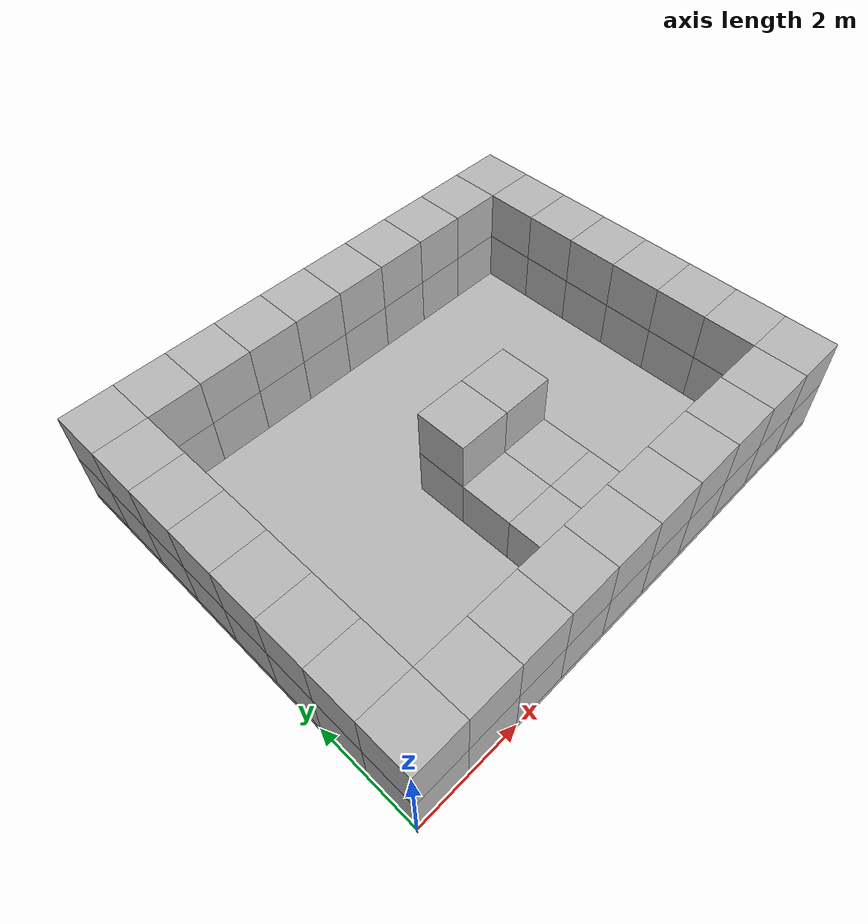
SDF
<sdf version="1.4">
  <world name="default">
    <light name="sun" type="directional">
      <cast_shadows>1</cast_shadows>
      <diffuse>0.8 0.8 0.8 1</diffuse>
      <specular>0.1 0.1 0.1 1</specular>
      <attenuation>
        <range>1000</range>
        <constant>0.9</constant>
        <linear>0.01</linear>
        <quadratic>0.001</quadratic>
      </attenuation>
      <direction>-0.5 0.5 -1</direction>
    </light>
    <model name="floor">
      <pose>5.0 4.0 -0.0625 0 0 0</pose>
      <static>true</static>
      <link name="link">
        <collision name="collision">
          <geometry>
            <box>
              <size>10.0 8.0 0.125</size>
            </box>
          </geometry>
        </collision>
        <visual name="visual">
          <geometry>
            <box>
              <size>10.0 8.0 0.125</size>
            </box>
          </geometry>
        </visual>
      </link>
    </model>
    <model name="box_0_0">
      <pose>0.5 0.5 0.5 0 0 0</pose>
      <static>true</static>
      <link name="link">
        <collision name="collision">
          <geometry>
            <box>
              <size>1.0 1.0 1.0</size>
            </box>
          </geometry>
        </collision>
        <visual name="visual">
          <geometry>
            <box>
              <size>1.0 1.0 1.0</size>
            </box>
          </geometry>
        </visual>
      </link>
    </model>
    <model name="box_0_1">
      <pose>0.5 1.5 0.5 0 0 0</pose>
      <static>true</static>
      <link name="link">
        <collision name="collision">
          <geometry>
            <box>
              <size>1.0 1.0 1.0</size>
            </box>
          </geometry>
        </collision>
        <visual name="visual">
          <geometry>
            <box>
              <size>1.0 1.0 1.0</size>
            </box>
          </geometry>
        </visual>
      </link>
    </model>
    <model name="box_0_2">
      <pose>0.5 2.5 0.5 0 0 0</pose>
      <static>true</static>
      <link name="link">
        <collision name="collision">
          <geometry>
            <box>
              <size>1.0 1.0 1.0</size>
            </box>
          </geometry>
        </collision>
        <visual name="visual">
          <geometry>
            <box>
              <size>1.0 1.0 1.0</size>
            </box>
          </geometry>
        </visual>
      </link>
    </model>
    <model name="box_0_3">
      <pose>0.5 3.5 0.5 0 0 0</pose>
      <static>true</static>
      <link name="link">
        <collision name="collision">
          <geometry>
            <box>
              <size>1.0 1.0 1.0</size>
            </box>
          </geometry>
        </collision>
        <visual name="visual">
          <geometry>
            <box>
              <size>1.0 1.0 1.0</size>
            </box>
          </geometry>
        </visual>
      </link>
    </model>
    <model name="box_0_4">
      <pose>0.5 4.5 0.5 0 0 0</pose>
      <static>true</static>
      <link name="link">
        <collision name="collision">
          <geometry>
            <box>
              <size>1.0 1.0 1.0</size>
            </box>
          </geometry>
        </collision>
        <visual name="visual">
          <geometry>
            <box>
              <size>1.0 1.0 1.0</size>
            </box>
          </geometry>
        </visual>
      </link>
    </model>
    <model name="box_0_5">
      <pose>0.5 5.5 0.5 0 0 0</pose>
      <static>true</static>
      <link name="link">
        <collision name="collision">
          <geometry>
            <box>
              <size>1.0 1.0 1.0</size>
            </box>
          </geometry>
        </collision>
        <visual name="visual">
          <geometry>
            <box>
              <size>1.0 1.0 1.0</size>
            </box>
          </geometry>
        </visual>
      </link>
    </model>
    <model name="box_0_6">
      <pose>0.5 6.5 0.5 0 0 0</pose>
      <static>true</static>
      <link name="link">
        <collision name="collision">
          <geometry>
            <box>
              <size>1.0 1.0 1.0</size>
            </box>
          </geometry>
        </collision>
        <visual name="visual">
          <geometry>
            <box>
              <size>1.0 1.0 1.0</size>
            </box>
          </geometry>
        </visual>
      </link>
    </model>
    <model name="box_0_7">
      <pose>0.5 7.5 0.5 0 0 0</pose>
      <static>true</static>
      <link name="link">
        <collision name="collision">
          <geometry>
            <box>
              <size>1.0 1.0 1.0</size>
            </box>
          </geometry>
        </collision>
        <visual name="visual">
          <geometry>
            <box>
              <size>1.0 1.0 1.0</size>
            </box>
          </geometry>
        </visual>
      </link>
    </model>
    <model name="box_1_0">
      <pose>1.5 0.5 0.5 0 0 0</pose>
      <static>true</static>
      <link name="link">
        <collision name="collision">
          <geometry>
            <box>
              <size>1.0 1.0 1.0</size>
            </box>
          </geometry>
        </collision>
        <visual name="visual">
          <geometry>
            <box>
              <size>1.0 1.0 1.0</size>
            </box>
          </geometry>
        </visual>
      </link>
    </model>
    <model name="box_1_7">
      <pose>1.5 7.5 0.5 0 0 0</pose>
      <static>true</static>
      <link name="link">
        <collision name="collision">
          <geometry>
            <box>
              <size>1.0 1.0 1.0</size>
            </box>
          </geometry>
        </collision>
        <visual name="visual">
          <geometry>
            <box>
              <size>1.0 1.0 1.0</size>
            </box>
          </geometry>
        </visual>
      </link>
    </model>
    <model name="box_2_0">
      <pose>2.5 0.5 0.5 0 0 0</pose>
      <static>true</static>
      <link name="link">
        <collision name="collision">
          <geometry>
            <box>
              <size>1.0 1.0 1.0</size>
            </box>
          </geometry>
        </collision>
        <visual name="visual">
          <geometry>
            <box>
              <size>1.0 1.0 1.0</size>
            </box>
          </geometry>
        </visual>
      </link>
    </model>
    <model name="box_2_7">
      <pose>2.5 7.5 0.5 0 0 0</pose>
      <static>true</static>
      <link name="link">
        <collision name="collision">
          <geometry>
            <box>
              <size>1.0 1.0 1.0</size>
            </box>
          </geometry>
        </collision>
        <visual name="visual">
          <geometry>
            <box>
              <size>1.0 1.0 1.0</size>
            </box>
          </geometry>
        </visual>
      </link>
    </model>
    <model name="box_3_0">
      <pose>3.5 0.5 0.5 0 0 0</pose>
      <static>true</static>
      <link name="link">
        <collision name="collision">
          <geometry>
            <box>
              <size>1.0 1.0 1.0</size>
            </box>
          </geometry>
        </collision>
        <visual name="visual">
          <geometry>
            <box>
              <size>1.0 1.0 1.0</size>
            </box>
          </geometry>
        </visual>
      </link>
    </model>
    <model name="box_3_7">
      <pose>3.5 7.5 0.5 0 0 0</pose>
      <static>true</static>
      <link name="link">
        <collision name="collision">
          <geometry>
            <box>
              <size>1.0 1.0 1.0</size>
            </box>
          </geometry>
        </collision>
        <visual name="visual">
          <geometry>
            <box>
              <size>1.0 1.0 1.0</size>
            </box>
          </geometry>
        </visual>
      </link>
    </model>
    <model name="box_4_0">
      <pose>4.5 0.5 0.5 0 0 0</pose>
      <static>true</static>
      <link name="link">
        <collision name="collision">
          <geometry>
            <box>
              <size>1.0 1.0 1.0</size>
            </box>
          </geometry>
        </collision>
        <visual name="visual">
          <geometry>
            <box>
              <size>1.0 1.0 1.0</size>
            </box>
          </geometry>
        </visual>
      </link>
    </model>
    <model name="box_4_1">
      <pose>4.5 1.5 0.5 0 0 0</pose>
      <static>true</static>
      <link name="link">
        <collision name="collision">
          <geometry>
            <box>
              <size>1.0 1.0 1.0</size>
            </box>
          </geometry>
        </collision>
        <visual name="visual">
          <geometry>
            <box>
              <size>1.0 1.0 1.0</size>
            </box>
          </geometry>
        </visual>
      </link>
    </model>
    <model name="box_4_2">
      <pose>4.5 2.5 0.5 0 0 0</pose>
      <static>true</static>
      <link name="link">
        <collision name="collision">
          <geometry>
            <box>
              <size>1.0 1.0 1.0</size>
            </box>
          </geometry>
        </collision>
        <visual name="visual">
          <geometry>
            <box>
              <size>1.0 1.0 1.0</size>
            </box>
          </geometry>
        </visual>
      </link>
    </model>
    <model name="box_4_3">
      <pose>4.5 3.5 0.5 0 0 0</pose>
      <static>true</static>
      <link name="link">
        <collision name="collision">
          <geometry>
            <box>
              <size>1.0 1.0 1.0</size>
            </box>
          </geometry>
        </collision>
        <visual name="visual">
          <geometry>
            <box>
              <size>1.0 1.0 1.0</size>
            </box>
          </geometry>
        </visual>
      </link>
    </model>
    <model name="box_4_7">
      <pose>4.5 7.5 0.5 0 0 0</pose>
      <static>true</static>
      <link name="link">
        <collision name="collision">
          <geometry>
            <box>
              <size>1.0 1.0 1.0</size>
            </box>
          </geometry>
        </collision>
        <visual name="visual">
          <geometry>
            <box>
              <size>1.0 1.0 1.0</size>
            </box>
          </geometry>
        </visual>
      </link>
    </model>
    <model name="box_5_0">
      <pose>5.5 0.5 0.5 0 0 0</pose>
      <static>true</static>
      <link name="link">
        <collision name="collision">
          <geometry>
            <box>
              <size>1.0 1.0 1.0</size>
            </box>
          </geometry>
        </collision>
        <visual name="visual">
          <geometry>
            <box>
              <size>1.0 1.0 1.0</size>
            </box>
          </geometry>
        </visual>
      </link>
    </model>
    <model name="box_5_1">
      <pose>5.5 1.5 0.5 0 0 0</pose>
      <static>true</static>
      <link name="link">
        <collision name="collision">
          <geometry>
            <box>
              <size>1.0 1.0 1.0</size>
            </box>
          </geometry>
        </collision>
        <visual name="visual">
          <geometry>
            <box>
              <size>1.0 1.0 1.0</size>
            </box>
          </geometry>
        </visual>
      </link>
    </model>
    <model name="box_5_2">
      <pose>5.5 2.5 0.5 0 0 0</pose>
      <static>true</static>
      <link name="link">
        <collision name="collision">
          <geometry>
            <box>
              <size>1.0 1.0 1.0</size>
            </box>
          </geometry>
        </collision>
        <visual name="visual">
          <geometry>
            <box>
              <size>1.0 1.0 1.0</size>
            </box>
          </geometry>
        </visual>
      </link>
    </model>
    <model name="box_5_3">
      <pose>5.5 3.5 0.5 0 0 0</pose>
      <static>true</static>
      <link name="link">
        <collision name="collision">
          <geometry>
            <box>
              <size>1.0 1.0 1.0</size>
            </box>
          </geometry>
        </collision>
        <visual name="visual">
          <geometry>
            <box>
              <size>1.0 1.0 1.0</size>
            </box>
          </geometry>
        </visual>
      </link>
    </model>
    <model name="box_5_7">
      <pose>5.5 7.5 0.5 0 0 0</pose>
      <static>true</static>
      <link name="link">
        <collision name="collision">
          <geometry>
            <box>
              <size>1.0 1.0 1.0</size>
            </box>
          </geometry>
        </collision>
        <visual name="visual">
          <geometry>
            <box>
              <size>1.0 1.0 1.0</size>
            </box>
          </geometry>
        </visual>
      </link>
    </model>
    <model name="box_6_0">
      <pose>6.5 0.5 0.5 0 0 0</pose>
      <static>true</static>
      <link name="link">
        <collision name="collision">
          <geometry>
            <box>
              <size>1.0 1.0 1.0</size>
            </box>
          </geometry>
        </collision>
        <visual name="visual">
          <geometry>
            <box>
              <size>1.0 1.0 1.0</size>
            </box>
          </geometry>
        </visual>
      </link>
    </model>
    <model name="box_6_7">
      <pose>6.5 7.5 0.5 0 0 0</pose>
      <static>true</static>
      <link name="link">
        <collision name="collision">
          <geometry>
            <box>
              <size>1.0 1.0 1.0</size>
            </box>
          </geometry>
        </collision>
        <visual name="visual">
          <geometry>
            <box>
              <size>1.0 1.0 1.0</size>
            </box>
          </geometry>
        </visual>
      </link>
    </model>
    <model name="box_7_0">
      <pose>7.5 0.5 0.5 0 0 0</pose>
      <static>true</static>
      <link name="link">
        <collision name="collision">
          <geometry>
            <box>
              <size>1.0 1.0 1.0</size>
            </box>
          </geometry>
        </collision>
        <visual name="visual">
          <geometry>
            <box>
              <size>1.0 1.0 1.0</size>
            </box>
          </geometry>
        </visual>
      </link>
    </model>
    <model name="box_7_7">
      <pose>7.5 7.5 0.5 0 0 0</pose>
      <static>true</static>
      <link name="link">
        <collision name="collision">
          <geometry>
            <box>
              <size>1.0 1.0 1.0</size>
            </box>
          </geometry>
        </collision>
        <visual name="visual">
          <geometry>
            <box>
              <size>1.0 1.0 1.0</size>
            </box>
          </geometry>
        </visual>
      </link>
    </model>
    <model name="box_8_0">
      <pose>8.5 0.5 0.5 0 0 0</pose>
      <static>true</static>
      <link name="link">
        <collision name="collision">
          <geometry>
            <box>
              <size>1.0 1.0 1.0</size>
            </box>
          </geometry>
        </collision>
        <visual name="visual">
          <geometry>
            <box>
              <size>1.0 1.0 1.0</size>
            </box>
          </geometry>
        </visual>
      </link>
    </model>
    <model name="box_8_7">
      <pose>8.5 7.5 0.5 0 0 0</pose>
      <static>true</static>
      <link name="link">
        <collision name="collision">
          <geometry>
            <box>
              <size>1.0 1.0 1.0</size>
            </box>
          </geometry>
        </collision>
        <visual name="visual">
          <geometry>
            <box>
              <size>1.0 1.0 1.0</size>
            </box>
          </geometry>
        </visual>
      </link>
    </model>
    <model name="box_9_0">
      <pose>9.5 0.5 0.5 0 0 0</pose>
      <static>true</static>
      <link name="link">
        <collision name="collision">
          <geometry>
            <box>
              <size>1.0 1.0 1.0</size>
            </box>
          </geometry>
        </collision>
        <visual name="visual">
          <geometry>
            <box>
              <size>1.0 1.0 1.0</size>
            </box>
          </geometry>
        </visual>
      </link>
    </model>
    <model name="box_9_1">
      <pose>9.5 1.5 0.5 0 0 0</pose>
      <static>true</static>
      <link name="link">
        <collision name="collision">
          <geometry>
            <box>
              <size>1.0 1.0 1.0</size>
            </box>
          </geometry>
        </collision>
        <visual name="visual">
          <geometry>
            <box>
              <size>1.0 1.0 1.0</size>
            </box>
          </geometry>
        </visual>
      </link>
    </model>
    <model name="box_9_2">
      <pose>9.5 2.5 0.5 0 0 0</pose>
      <static>true</static>
      <link name="link">
        <collision name="collision">
          <geometry>
            <box>
              <size>1.0 1.0 1.0</size>
            </box>
          </geometry>
        </collision>
        <visual name="visual">
          <geometry>
            <box>
              <size>1.0 1.0 1.0</size>
            </box>
          </geometry>
        </visual>
      </link>
    </model>
    <model name="box_9_3">
      <pose>9.5 3.5 0.5 0 0 0</pose>
      <static>true</static>
      <link name="link">
        <collision name="collision">
          <geometry>
            <box>
              <size>1.0 1.0 1.0</size>
            </box>
          </geometry>
        </collision>
        <visual name="visual">
          <geometry>
            <box>
              <size>1.0 1.0 1.0</size>
            </box>
          </geometry>
        </visual>
      </link>
    </model>
    <model name="box_9_4">
      <pose>9.5 4.5 0.5 0 0 0</pose>
      <static>true</static>
      <link name="link">
        <collision name="collision">
          <geometry>
            <box>
              <size>1.0 1.0 1.0</size>
            </box>
          </geometry>
        </collision>
        <visual name="visual">
          <geometry>
            <box>
              <size>1.0 1.0 1.0</size>
            </box>
          </geometry>
        </visual>
      </link>
    </model>
    <model name="box_9_5">
      <pose>9.5 5.5 0.5 0 0 0</pose>
      <static>true</static>
      <link name="link">
        <collision name="collision">
          <geometry>
            <box>
              <size>1.0 1.0 1.0</size>
            </box>
          </geometry>
        </collision>
        <visual name="visual">
          <geometry>
            <box>
              <size>1.0 1.0 1.0</size>
            </box>
          </geometry>
        </visual>
      </link>
    </model>
    <model name="box_9_6">
      <pose>9.5 6.5 0.5 0 0 0</pose>
      <static>true</static>
      <link name="link">
        <collision name="collision">
          <geometry>
            <box>
              <size>1.0 1.0 1.0</size>
            </box>
          </geometry>
        </collision>
        <visual name="visual">
          <geometry>
            <box>
              <size>1.0 1.0 1.0</size>
            </box>
          </geometry>
        </visual>
      </link>
    </model>
    <model name="box_9_7">
      <pose>9.5 7.5 0.5 0 0 0</pose>
      <static>true</static>
      <link name="link">
        <collision name="collision">
          <geometry>
            <box>
              <size>1.0 1.0 1.0</size>
            </box>
          </geometry>
        </collision>
        <visual name="visual">
          <geometry>
            <box>
              <size>1.0 1.0 1.0</size>
            </box>
          </geometry>
        </visual>
      </link>
    </model>

    <model name="box_10_0">
      <pose>0.5 0.5 1.5 0 0 0</pose>
      <static>true</static>
      <link name="link">
        <collision name="collision">
          <geometry>
            <box>
              <size>1.0 1.0 1.0</size>
            </box>
          </geometry>
        </collision>
        <visual name="visual">
          <geometry>
            <box>
              <size>1.0 1.0 1.0</size>
            </box>
          </geometry>
        </visual>
      </link>
    </model>
    <model name="box_10_1">
      <pose>0.5 1.5 1.5 0 0 0</pose>
      <static>true</static>
      <link name="link">
        <collision name="collision">
          <geometry>
            <box>
              <size>1.0 1.0 1.0</size>
            </box>
          </geometry>
        </collision>
        <visual name="visual">
          <geometry>
            <box>
              <size>1.0 1.0 1.0</size>
            </box>
          </geometry>
        </visual>
      </link>
    </model>
    <model name="box_10_2">
      <pose>0.5 2.5 1.5 0 0 0</pose>
      <static>true</static>
      <link name="link">
        <collision name="collision">
          <geometry>
            <box>
              <size>1.0 1.0 1.0</size>
            </box>
          </geometry>
        </collision>
        <visual name="visual">
          <geometry>
            <box>
              <size>1.0 1.0 1.0</size>
            </box>
          </geometry>
        </visual>
      </link>
    </model>
    <model name="box_10_3">
      <pose>0.5 3.5 1.5 0 0 0</pose>
      <static>true</static>
      <link name="link">
        <collision name="collision">
          <geometry>
            <box>
              <size>1.0 1.0 1.0</size>
            </box>
          </geometry>
        </collision>
        <visual name="visual">
          <geometry>
            <box>
              <size>1.0 1.0 1.0</size>
            </box>
          </geometry>
        </visual>
      </link>
    </model>
    <model name="box_10_4">
      <pose>0.5 4.5 1.5 0 0 0</pose>
      <static>true</static>
      <link name="link">
        <collision name="collision">
          <geometry>
            <box>
              <size>1.0 1.0 1.0</size>
            </box>
          </geometry>
        </collision>
        <visual name="visual">
          <geometry>
            <box>
              <size>1.0 1.0 1.0</size>
            </box>
          </geometry>
        </visual>
      </link>
    </model>
    <model name="box_10_5">
      <pose>0.5 5.5 1.5 0 0 0</pose>
      <static>true</static>
      <link name="link">
        <collision name="collision">
          <geometry>
            <box>
              <size>1.0 1.0 1.0</size>
            </box>
          </geometry>
        </collision>
        <visual name="visual">
          <geometry>
            <box>
              <size>1.0 1.0 1.0</size>
            </box>
          </geometry>
        </visual>
      </link>
    </model>
    <model name="box_10_6">
      <pose>0.5 6.5 1.5 0 0 0</pose>
      <static>true</static>
      <link name="link">
        <collision name="collision">
          <geometry>
            <box>
              <size>1.0 1.0 1.0</size>
            </box>
          </geometry>
        </collision>
        <visual name="visual">
          <geometry>
            <box>
              <size>1.0 1.0 1.0</size>
            </box>
          </geometry>
        </visual>
      </link>
    </model>
    <model name="box_10_7">
      <pose>0.5 7.5 1.5 0 0 0</pose>
      <static>true</static>
      <link name="link">
        <collision name="collision">
          <geometry>
            <box>
              <size>1.0 1.0 1.0</size>
            </box>
          </geometry>
        </collision>
        <visual name="visual">
          <geometry>
            <box>
              <size>1.0 1.0 1.0</size>
            </box>
          </geometry>
        </visual>
      </link>
    </model>
    <model name="box_11_0">
      <pose>1.5 0.5 1.5 0 0 0</pose>
      <static>true</static>
      <link name="link">
        <collision name="collision">
          <geometry>
            <box>
              <size>1.0 1.0 1.0</size>
            </box>
          </geometry>
        </collision>
        <visual name="visual">
          <geometry>
            <box>
              <size>1.0 1.0 1.0</size>
            </box>
          </geometry>
        </visual>
      </link>
    </model>
    <model name="box_11_7">
      <pose>1.5 7.5 1.5 0 0 0</pose>
      <static>true</static>
      <link name="link">
        <collision name="collision">
          <geometry>
            <box>
              <size>1.0 1.0 1.0</size>
            </box>
          </geometry>
        </collision>
        <visual name="visual">
          <geometry>
            <box>
              <size>1.0 1.0 1.0</size>
            </box>
          </geometry>
        </visual>
      </link>
    </model>
    <model name="box_12_0">
      <pose>2.5 0.5 1.5 0 0 0</pose>
      <static>true</static>
      <link name="link">
        <collision name="collision">
          <geometry>
            <box>
              <size>1.0 1.0 1.0</size>
            </box>
          </geometry>
        </collision>
        <visual name="visual">
          <geometry>
            <box>
              <size>1.0 1.0 1.0</size>
            </box>
          </geometry>
        </visual>
      </link>
    </model>
    <model name="box_12_7">
      <pose>2.5 7.5 1.5 0 0 0</pose>
      <static>true</static>
      <link name="link">
        <collision name="collision">
          <geometry>
            <box>
              <size>1.0 1.0 1.0</size>
            </box>
          </geometry>
        </collision>
        <visual name="visual">
          <geometry>
            <box>
              <size>1.0 1.0 1.0</size>
            </box>
          </geometry>
        </visual>
      </link>
    </model>
    <model name="box_13_0">
      <pose>3.5 0.5 1.5 0 0 0</pose>
      <static>true</static>
      <link name="link">
        <collision name="collision">
          <geometry>
            <box>
              <size>1.0 1.0 1.0</size>
            </box>
          </geometry>
        </collision>
        <visual name="visual">
          <geometry>
            <box>
              <size>1.0 1.0 1.0</size>
            </box>
          </geometry>
        </visual>
      </link>
    </model>
    <model name="box_13_7">
      <pose>3.5 7.5 1.5 0 0 0</pose>
      <static>true</static>
      <link name="link">
        <collision name="collision">
          <geometry>
            <box>
              <size>1.0 1.0 1.0</size>
            </box>
          </geometry>
        </collision>
        <visual name="visual">
          <geometry>
            <box>
              <size>1.0 1.0 1.0</size>
            </box>
          </geometry>
        </visual>
      </link>
    </model>
    <model name="box_14_0">
      <pose>4.5 0.5 1.5 0 0 0</pose>
      <static>true</static>
      <link name="link">
        <collision name="collision">
          <geometry>
            <box>
              <size>1.0 1.0 1.0</size>
            </box>
          </geometry>
        </collision>
        <visual name="visual">
          <geometry>
            <box>
              <size>1.0 1.0 1.0</size>
            </box>
          </geometry>
        </visual>
      </link>
    </model>
    <model name="box_14_3">
      <pose>4.5 3.5 1.5 0 0 0</pose>
      <static>true</static>
      <link name="link">
        <collision name="collision">
          <geometry>
            <box>
              <size>1.0 1.0 1.0</size>
            </box>
          </geometry>
        </collision>
        <visual name="visual">
          <geometry>
            <box>
              <size>1.0 1.0 1.0</size>
            </box>
          </geometry>
        </visual>
      </link>
    </model>
    <model name="box_14_7">
      <pose>4.5 7.5 1.5 0 0 0</pose>
      <static>true</static>
      <link name="link">
        <collision name="collision">
          <geometry>
            <box>
              <size>1.0 1.0 1.0</size>
            </box>
          </geometry>
        </collision>
        <visual name="visual">
          <geometry>
            <box>
              <size>1.0 1.0 1.0</size>
            </box>
          </geometry>
        </visual>
      </link>
    </model>
    <model name="box_15_0">
      <pose>5.5 0.5 1.5 0 0 0</pose>
      <static>true</static>
      <link name="link">
        <collision name="collision">
          <geometry>
            <box>
              <size>1.0 1.0 1.0</size>
            </box>
          </geometry>
        </collision>
        <visual name="visual">
          <geometry>
            <box>
              <size>1.0 1.0 1.0</size>
            </box>
          </geometry>
        </visual>
      </link>
    </model>
    <model name="box_15_3">
      <pose>5.5 3.5 1.5 0 0 0</pose>
      <static>true</static>
      <link name="link">
        <collision name="collision">
          <geometry>
            <box>
              <size>1.0 1.0 1.0</size>
            </box>
          </geometry>
        </collision>
        <visual name="visual">
          <geometry>
            <box>
              <size>1.0 1.0 1.0</size>
            </box>
          </geometry>
        </visual>
      </link>
    </model>
    <model name="box_15_7">
      <pose>5.5 7.5 1.5 0 0 0</pose>
      <static>true</static>
      <link name="link">
        <collision name="collision">
          <geometry>
            <box>
              <size>1.0 1.0 1.0</size>
            </box>
          </geometry>
        </collision>
        <visual name="visual">
          <geometry>
            <box>
              <size>1.0 1.0 1.0</size>
            </box>
          </geometry>
        </visual>
      </link>
    </model>
    <model name="box_16_0">
      <pose>6.5 0.5 1.5 0 0 0</pose>
      <static>true</static>
      <link name="link">
        <collision name="collision">
          <geometry>
            <box>
              <size>1.0 1.0 1.0</size>
            </box>
          </geometry>
        </collision>
        <visual name="visual">
          <geometry>
            <box>
              <size>1.0 1.0 1.0</size>
            </box>
          </geometry>
        </visual>
      </link>
    </model>
    <model name="box_16_7">
      <pose>6.5 7.5 1.5 0 0 0</pose>
      <static>true</static>
      <link name="link">
        <collision name="collision">
          <geometry>
            <box>
              <size>1.0 1.0 1.0</size>
            </box>
          </geometry>
        </collision>
        <visual name="visual">
          <geometry>
            <box>
              <size>1.0 1.0 1.0</size>
            </box>
          </geometry>
        </visual>
      </link>
    </model>
    <model name="box_17_0">
      <pose>7.5 0.5 1.5 0 0 0</pose>
      <static>true</static>
      <link name="link">
        <collision name="collision">
          <geometry>
            <box>
              <size>1.0 1.0 1.0</size>
            </box>
          </geometry>
        </collision>
        <visual name="visual">
          <geometry>
            <box>
              <size>1.0 1.0 1.0</size>
            </box>
          </geometry>
        </visual>
      </link>
    </model>
    <model name="box_17_7">
      <pose>7.5 7.5 1.5 0 0 0</pose>
      <static>true</static>
      <link name="link">
        <collision name="collision">
          <geometry>
            <box>
              <size>1.0 1.0 1.0</size>
            </box>
          </geometry>
        </collision>
        <visual name="visual">
          <geometry>
            <box>
              <size>1.0 1.0 1.0</size>
            </box>
          </geometry>
        </visual>
      </link>
    </model>
    <model name="box_18_0">
      <pose>8.5 0.5 1.5 0 0 0</pose>
      <static>true</static>
      <link name="link">
        <collision name="collision">
          <geometry>
            <box>
              <size>1.0 1.0 1.0</size>
            </box>
          </geometry>
        </collision>
        <visual name="visual">
          <geometry>
            <box>
              <size>1.0 1.0 1.0</size>
            </box>
          </geometry>
        </visual>
      </link>
    </model>
    <model name="box_18_7">
      <pose>8.5 7.5 1.5 0 0 0</pose>
      <static>true</static>
      <link name="link">
        <collision name="collision">
          <geometry>
            <box>
              <size>1.0 1.0 1.0</size>
            </box>
          </geometry>
        </collision>
        <visual name="visual">
          <geometry>
            <box>
              <size>1.0 1.0 1.0</size>
            </box>
          </geometry>
        </visual>
      </link>
    </model>
    <model name="box_19_0">
      <pose>9.5 0.5 1.5 0 0 0</pose>
      <static>true</static>
      <link name="link">
        <collision name="collision">
          <geometry>
            <box>
              <size>1.0 1.0 1.0</size>
            </box>
          </geometry>
        </collision>
        <visual name="visual">
          <geometry>
            <box>
              <size>1.0 1.0 1.0</size>
            </box>
          </geometry>
        </visual>
      </link>
    </model>
    <model name="box_19_1">
      <pose>9.5 1.5 1.5 0 0 0</pose>
      <static>true</static>
      <link name="link">
        <collision name="collision">
          <geometry>
            <box>
              <size>1.0 1.0 1.0</size>
            </box>
          </geometry>
        </collision>
        <visual name="visual">
          <geometry>
            <box>
              <size>1.0 1.0 1.0</size>
            </box>
          </geometry>
        </visual>
      </link>
    </model>
    <model name="box_19_2">
      <pose>9.5 2.5 1.5 0 0 0</pose>
      <static>true</static>
      <link name="link">
        <collision name="collision">
          <geometry>
            <box>
              <size>1.0 1.0 1.0</size>
            </box>
          </geometry>
        </collision>
        <visual name="visual">
          <geometry>
            <box>
              <size>1.0 1.0 1.0</size>
            </box>
          </geometry>
        </visual>
      </link>
    </model>
    <model name="box_19_3">
      <pose>9.5 3.5 1.5 0 0 0</pose>
      <static>true</static>
      <link name="link">
        <collision name="collision">
          <geometry>
            <box>
              <size>1.0 1.0 1.0</size>
            </box>
          </geometry>
        </collision>
        <visual name="visual">
          <geometry>
            <box>
              <size>1.0 1.0 1.0</size>
            </box>
          </geometry>
        </visual>
      </link>
    </model>
    <model name="box_19_4">
      <pose>9.5 4.5 1.5 0 0 0</pose>
      <static>true</static>
      <link name="link">
        <collision name="collision">
          <geometry>
            <box>
              <size>1.0 1.0 1.0</size>
            </box>
          </geometry>
        </collision>
        <visual name="visual">
          <geometry>
            <box>
              <size>1.0 1.0 1.0</size>
            </box>
          </geometry>
        </visual>
      </link>
    </model>
    <model name="box_19_5">
      <pose>9.5 5.5 1.5 0 0 0</pose>
      <static>true</static>
      <link name="link">
        <collision name="collision">
          <geometry>
            <box>
              <size>1.0 1.0 1.0</size>
            </box>
          </geometry>
        </collision>
        <visual name="visual">
          <geometry>
            <box>
              <size>1.0 1.0 1.0</size>
            </box>
          </geometry>
        </visual>
      </link>
    </model>
    <model name="box_19_6">
      <pose>9.5 6.5 1.5 0 0 0</pose>
      <static>true</static>
      <link name="link">
        <collision name="collision">
          <geometry>
            <box>
              <size>1.0 1.0 1.0</size>
            </box>
          </geometry>
        </collision>
        <visual name="visual">
          <geometry>
            <box>
              <size>1.0 1.0 1.0</size>
            </box>
          </geometry>
        </visual>
      </link>
    </model>
    <model name="box_19_7">
      <pose>9.5 7.5 1.5 0 0 0</pose>
      <static>true</static>
      <link name="link">
        <collision name="collision">
          <geometry>
            <box>
              <size>1.0 1.0 1.0</size>
            </box>
          </geometry>
        </collision>
        <visual name="visual">
          <geometry>
            <box>
              <size>1.0 1.0 1.0</size>
            </box>
          </geometry>
        </visual>
      </link>
    </model>
  </world>
</sdf>
